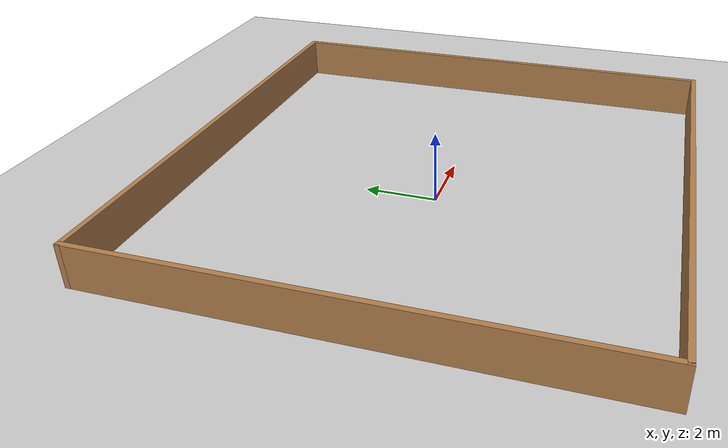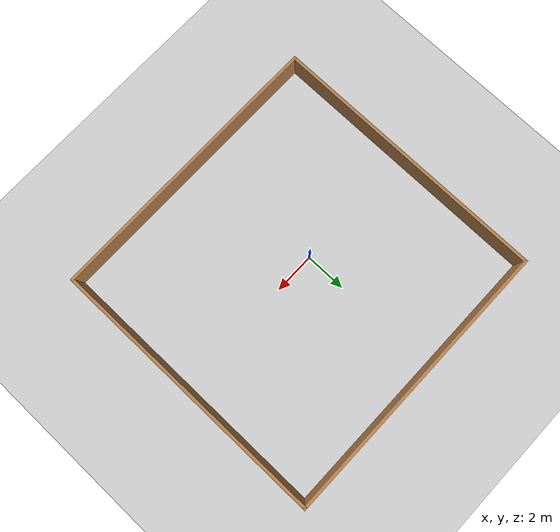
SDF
<sdf version="1.7">
 <world name="default">
  <model name="ground_plane">
   <static>1</static>
   <link name="link">
    <collision name="collision">
     <geometry><plane><normal>0 0 1</normal><size>100 100</size></plane></geometry>
     <surface>
      <contact><collide_bitmask>65535</collide_bitmask></contact>
      <friction><ode><mu>100</mu><mu2>50</mu2></ode></friction>
     </surface>
    </collision>
    <visual name="visual">
     <cast_shadows>0</cast_shadows>
     <geometry><plane><normal>0 0 1</normal><size>100 100</size></plane></geometry>
     <material>
      <script><uri>file://media/materials/scripts/gazebo.material</uri><name>Gazebo/Grey</name></script>
     </material>
    </visual>
   </link>
  </model>
  <model name="turtlebot3_park">
   <pose>0.855 0.195 0 0 -0 0</pose>
   <link name="Wall_0">
    <collision name="Wall_0_Collision">
     <geometry><box><size>14 0.15 1.2</size></box></geometry>
     <pose>0 0 0.6 0 -0 0</pose>
    </collision>
    <visual name="Wall_0_Visual">
     <pose>0 0 0.6 0 -0 0</pose>
     <geometry><box><size>14 0.15 1.2</size></box></geometry>
     <material>
      <script><uri>file://media/materials/scripts/gazebo.material</uri><name>Gazebo/Wood</name></script>
      <ambient>1 1 1 1</ambient>
     </material>
     <meta><layer>0</layer></meta>
    </visual>
    <pose>0 -6.8 0 0 -0 0</pose>
   </link>
   <link name="Wall_1">
    <collision name="Wall_1_Collision">
     <geometry><box><size>13.75 0.15 1.2</size></box></geometry>
     <pose>0 0 0.6 0 -0 0</pose>
    </collision>
    <visual name="Wall_1_Visual">
     <pose>0 0 0.6 0 -0 0</pose>
     <geometry><box><size>13.75 0.15 1.2</size></box></geometry>
     <material>
      <script><uri>file://media/materials/scripts/gazebo.material</uri><name>Gazebo/Wood</name></script>
      <ambient>1 1 1 1</ambient>
     </material>
     <meta><layer>0</layer></meta>
    </visual>
    <pose>6.925 -0 0 0 -0 1.5708</pose>
   </link>
   <link name="Wall_2">
    <collision name="Wall_2_Collision">
     <geometry><box><size>14 0.15 1.2</size></box></geometry>
     <pose>0 0 0.6 0 -0 0</pose>
    </collision>
    <visual name="Wall_2_Visual">
     <pose>0 0 0.6 0 -0 0</pose>
     <geometry><box><size>14 0.15 1.2</size></box></geometry>
     <material>
      <script><uri>file://media/materials/scripts/gazebo.material</uri><name>Gazebo/Wood</name></script>
      <ambient>1 1 1 1</ambient>
     </material>
     <meta><layer>0</layer></meta>
    </visual>
    <pose>0 6.8 0 0 -0 3.14159</pose>
   </link>
   <link name="Wall_3">
    <collision name="Wall_3_Collision">
     <geometry><box><size>13.75 0.15 1.2</size></box></geometry>
     <pose>0 0 0.6 0 -0 0</pose>
    </collision>
    <visual name="Wall_3_Visual">
     <pose>0 0 0.6 0 -0 0</pose>
     <geometry><box><size>13.75 0.15 1.2</size></box></geometry>
     <material>
      <script><uri>file://media/materials/scripts/gazebo.material</uri><name>Gazebo/Wood</name></script>
      <ambient>1 1 1 1</ambient>
     </material>
     <meta><layer>0</layer></meta>
    </visual>
    <pose>-6.925 -0 0 0 -0 -1.5708</pose>
   </link>
   <static>1</static>
  </model>
 </world>
</sdf>
